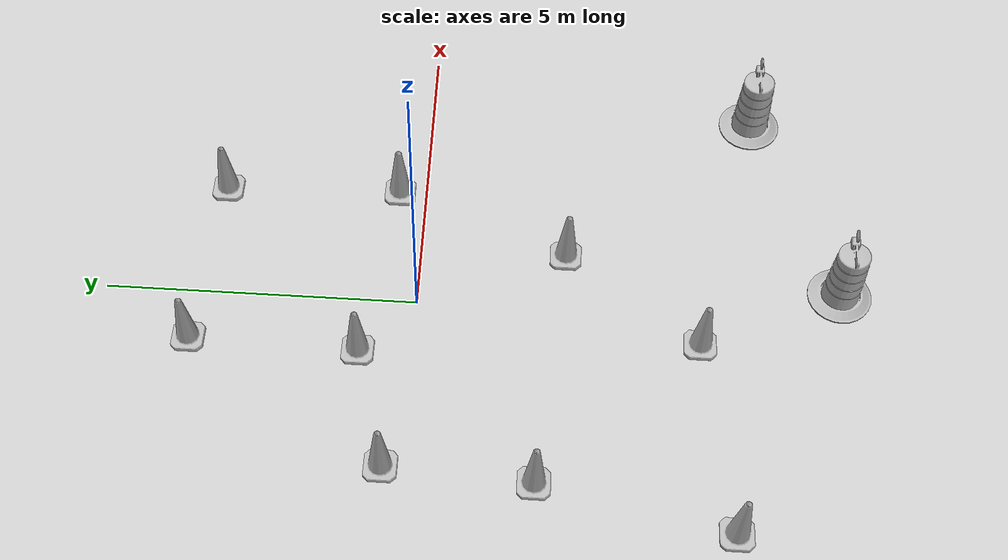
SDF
<sdf version="1.7">
 <world name="default">
  <light name="sun" type="directional">
   <pose>0 0 10 0 -0 0</pose>
   <diffuse>0.8 0.8 0.8 1</diffuse>
   <specular>0.2 0.2 0.2 1</specular>
   <attenuation>
    <range>1000</range>
    <constant>0.9</constant>
    <linear>0.01</linear>
    <quadratic>0.001</quadratic>
   </attenuation>
   <direction>-0.5 0.1 -0.9</direction>
   <spot><inner_angle>0</inner_angle><outer_angle>0</outer_angle><falloff>0</falloff></spot>
  </light>
  <model name="ground_plane">
   <static>1</static>
   <link name="link">
    <collision name="collision">
     <geometry><plane><normal>0 0 1</normal><size>100 100</size></plane></geometry>
     <surface><friction><ode><mu>100</mu><mu2>50</mu2></ode></friction></surface>
    </collision>
    <visual name="visual">
     <cast_shadows>0</cast_shadows>
     <geometry><plane><normal>0 0 1</normal><size>100 100</size></plane></geometry>
     <material>
      <script><uri>file://media/materials/scripts/gazebo.material</uri><name>Gazebo/Grey</name></script>
     </material>
    </visual>
   </link>
  </model>
  <gravity>0 0 -9.8</gravity>
  <magnetic_field>6e-06 2.3e-05 -4.2e-05</magnetic_field>
  <atmosphere type="adiabatic"/>
  <physics type="ode">
   <max_step_size>0.001</max_step_size>
   <real_time_factor>1</real_time_factor>
   <real_time_update_rate>1000</real_time_update_rate>
  </physics>
  <scene><ambient>0.4 0.4 0.4 1</ambient><background>0.7 0.7 0.7 1</background><shadows>1</shadows></scene>
  <audio><device>default</device></audio>
  <spherical_coordinates>
   <surface_model>EARTH_WGS84</surface_model>
   <latitude_deg>0</latitude_deg>
   <longitude_deg>0</longitude_deg>
   <elevation>0</elevation>
   <heading_deg>0</heading_deg>
  </spherical_coordinates>
  <model name="Construction Cone">
   <link name="link">
    <collision name="collision">
     <geometry>
      <mesh><scale>10 10 10</scale><uri>model://construction_cone/meshes/construction_cone.dae</uri></mesh>
     </geometry>
    </collision>
    <visual name="visual">
     <geometry>
      <mesh><scale>10 10 10</scale><uri>model://construction_cone/meshes/construction_cone.dae</uri></mesh>
     </geometry>
    </visual>
    <inertial>
     <inertia><ixx>1</ixx><ixy>0</ixy><ixz>0</ixz><iyy>1</iyy><iyz>0</iyz><izz>1</izz></inertia>
     <mass>1</mass>
    </inertial>
   </link>
   <pose>-3.04445 -1.97046 -0 0 -0 0</pose>
  </model>
  <model name="Construction Cone_0">
   <link name="link">
    <collision name="collision">
     <geometry>
      <mesh><scale>10 10 10</scale><uri>model://construction_cone/meshes/construction_cone.dae</uri></mesh>
     </geometry>
    </collision>
    <visual name="visual">
     <geometry>
      <mesh><scale>10 10 10</scale><uri>model://construction_cone/meshes/construction_cone.dae</uri></mesh>
     </geometry>
    </visual>
    <inertial>
     <inertia><ixx>1</ixx><ixy>0</ixy><ixz>0</ixz><iyy>1</iyy><iyz>0</iyz><izz>1</izz></inertia>
     <mass>1</mass>
    </inertial>
   </link>
   <pose>-2.90676 0.319543 -0 0 -0 0</pose>
  </model>
  <model name="Construction Cone_1">
   <link name="link">
    <collision name="collision">
     <geometry>
      <mesh><scale>10 10 10</scale><uri>model://construction_cone/meshes/construction_cone.dae</uri></mesh>
     </geometry>
    </collision>
    <visual name="visual">
     <geometry>
      <mesh><scale>10 10 10</scale><uri>model://construction_cone/meshes/construction_cone.dae</uri></mesh>
     </geometry>
    </visual>
    <inertial>
     <inertia><ixx>1</ixx><ixy>0</ixy><ixz>0</ixz><iyy>1</iyy><iyz>0</iyz><izz>1</izz></inertia>
     <mass>1</mass>
    </inertial>
   </link>
   <pose>-0.51711 -4.49064 -3e-06 -4e-06 -1e-06 0</pose>
  </model>
  <model name="Construction Cone_2">
   <link name="link">
    <collision name="collision">
     <geometry>
      <mesh><scale>10 10 10</scale><uri>model://construction_cone/meshes/construction_cone.dae</uri></mesh>
     </geometry>
    </collision>
    <visual name="visual">
     <geometry>
      <mesh><scale>10 10 10</scale><uri>model://construction_cone/meshes/construction_cone.dae</uri></mesh>
     </geometry>
    </visual>
    <inertial>
     <inertia><ixx>1</ixx><ixy>0</ixy><ixz>0</ixz><iyy>1</iyy><iyz>0</iyz><izz>1</izz></inertia>
     <mass>1</mass>
    </inertial>
   </link>
   <pose>-3.66824 -4.93872 -1e-05 0 -0 0</pose>
  </model>
  <model name="Construction Cone_3">
   <link name="link">
    <collision name="collision">
     <geometry>
      <mesh><scale>10 10 10</scale><uri>model://construction_cone/meshes/construction_cone.dae</uri></mesh>
     </geometry>
    </collision>
    <visual name="visual">
     <geometry>
      <mesh><scale>10 10 10</scale><uri>model://construction_cone/meshes/construction_cone.dae</uri></mesh>
     </geometry>
    </visual>
    <inertial>
     <inertia><ixx>1</ixx><ixy>0</ixy><ixz>0</ixz><iyy>1</iyy><iyz>0</iyz><izz>1</izz></inertia>
     <mass>1</mass>
    </inertial>
   </link>
   <pose>-0.93802 0.858439 -9e-06 0 -0 0</pose>
  </model>
  <model name="Construction Cone_4">
   <link name="link">
    <collision name="collision">
     <geometry>
      <mesh><scale>10 10 10</scale><uri>model://construction_cone/meshes/construction_cone.dae</uri></mesh>
     </geometry>
    </collision>
    <visual name="visual">
     <geometry>
      <mesh><scale>10 10 10</scale><uri>model://construction_cone/meshes/construction_cone.dae</uri></mesh>
     </geometry>
    </visual>
    <inertial>
     <inertia><ixx>1</ixx><ixy>0</ixy><ixz>0</ixz><iyy>1</iyy><iyz>0</iyz><izz>1</izz></inertia>
     <mass>1</mass>
    </inertial>
   </link>
   <pose>1.03241 -2.34855 -0 0 -0 0</pose>
  </model>
  <model name="Construction Cone_5">
   <link name="link">
    <collision name="collision">
     <geometry>
      <mesh><scale>10 10 10</scale><uri>model://construction_cone/meshes/construction_cone.dae</uri></mesh>
     </geometry>
    </collision>
    <visual name="visual">
     <geometry>
      <mesh><scale>10 10 10</scale><uri>model://construction_cone/meshes/construction_cone.dae</uri></mesh>
     </geometry>
    </visual>
    <inertial>
     <inertia><ixx>1</ixx><ixy>0</ixy><ixz>0</ixz><iyy>1</iyy><iyz>0</iyz><izz>1</izz></inertia>
     <mass>1</mass>
    </inertial>
   </link>
   <pose>2.15018 0.450385 -0 0 -0 0</pose>
  </model>
  <model name="Construction Cone_6">
   <link name="link">
    <collision name="collision">
     <geometry>
      <mesh><scale>10 10 10</scale><uri>model://construction_cone/meshes/construction_cone.dae</uri></mesh>
     </geometry>
    </collision>
    <visual name="visual">
     <geometry>
      <mesh><scale>10 10 10</scale><uri>model://construction_cone/meshes/construction_cone.dae</uri></mesh>
     </geometry>
    </visual>
    <inertial>
     <inertia><ixx>1</ixx><ixy>0</ixy><ixz>0</ixz><iyy>1</iyy><iyz>0</iyz><izz>1</izz></inertia>
     <mass>1</mass>
    </inertial>
   </link>
   <pose>-0.865621 3.54399 -0 0 -0 0</pose>
  </model>
  <model name="Construction Cone_7">
   <link name="link">
    <collision name="collision">
     <geometry>
      <mesh><scale>10 10 10</scale><uri>model://construction_cone/meshes/construction_cone.dae</uri></mesh>
     </geometry>
    </collision>
    <visual name="visual">
     <geometry>
      <mesh><scale>10 10 10</scale><uri>model://construction_cone/meshes/construction_cone.dae</uri></mesh>
     </geometry>
    </visual>
    <inertial>
     <inertia><ixx>1</ixx><ixy>0</ixy><ixz>0</ixz><iyy>1</iyy><iyz>0</iyz><izz>1</izz></inertia>
     <mass>1</mass>
    </inertial>
   </link>
   <pose>2.05912 3.33739 0 -0 -0 -0</pose>
  </model>
  <model name="Construction Barrel">
   <link name="link">
    <inertial>
     <pose>0 0 0.4 0 -0 0</pose>
     <mass>500</mass>
     <inertia><ixx>51.2096</ixx><iyy>51.2096</iyy><izz>25</izz><ixy>0</ixy><ixz>0</ixz><iyz>0</iyz></inertia>
    </inertial>
    <collision name="collision">
     <geometry><mesh><uri>model://construction_barrel/meshes/construction_barrel.dae</uri></mesh></geometry>
    </collision>
    <visual name="visual">
     <geometry><mesh><uri>model://construction_barrel/meshes/construction_barrel.dae</uri></mesh></geometry>
    </visual>
   </link>
   <pose>0.552973 -6.74355 0 0 0 -7e-06</pose>
  </model>
  <model name="Construction Barrel_0">
   <link name="link">
    <inertial>
     <pose>0 0 0.4 0 -0 0</pose>
     <mass>500</mass>
     <inertia><ixx>51.2096</ixx><iyy>51.2096</iyy><izz>25</izz><ixy>0</ixy><ixz>0</ixz><iyz>0</iyz></inertia>
    </inertial>
    <collision name="collision">
     <geometry><mesh><uri>model://construction_barrel/meshes/construction_barrel.dae</uri></mesh></geometry>
    </collision>
    <visual name="visual">
     <geometry><mesh><uri>model://construction_barrel/meshes/construction_barrel.dae</uri></mesh></geometry>
    </visual>
   </link>
   <pose>3.95737 -5.45092 -0 0 0 -4e-06</pose>
  </model>
 </world>
</sdf>
